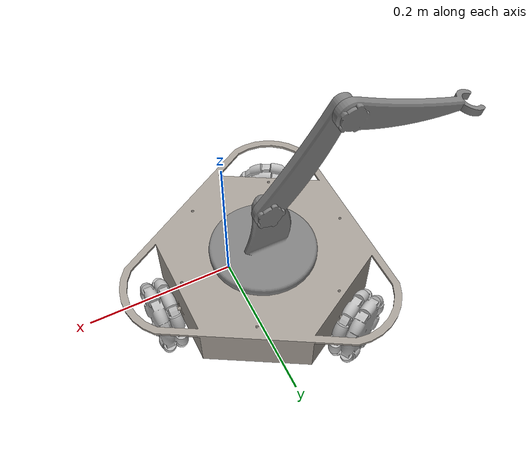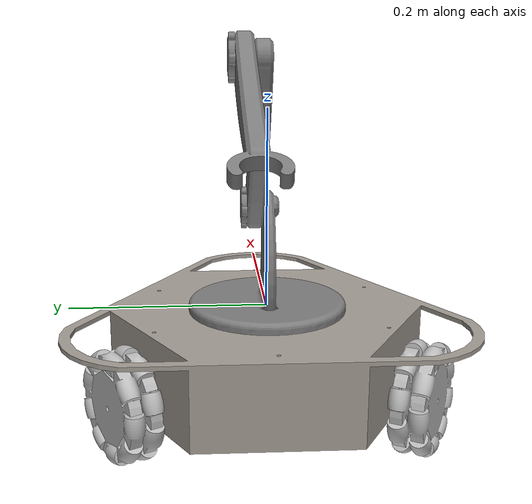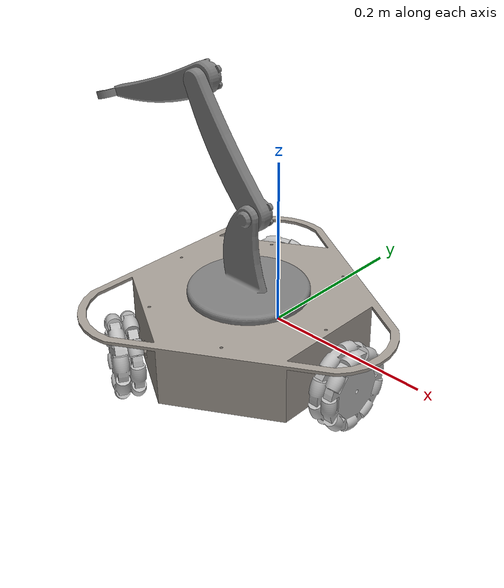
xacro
<?xml version="1.0" encoding="utf-8"?>
<robot name="robot_kin" xmlns:xacro="http://ros.org/wiki/xacro">
  <!-- Base Link -->
  <link name="base_link">
    <inertial>
      <origin xyz="-0.0514950390834328 0.00372680362943543 -0.0212713777766178" rpy="0 0 0" />
      <mass value="5.546524151294" />
      <inertia ixx="0.0390256274086559" ixy="7.53990510164341E-17" ixz="-9.49819895659914E-18" iyy="0.0390256274084877" iyz="-4.52445032425781E-14" izz="0.0727431794136434" />
    </inertial>
    <visual>
      <origin xyz="0 0 0" rpy="0 0 0" />
      <geometry>
        <mesh filename="package://robot_kin/meshes/base_link.STL" />
      </geometry>
      <material name="">
        <color rgba="0.647058823529412 0.619607843137255 0.588235294117647 1" />
      </material>
    </visual>
    <collision>
      <origin xyz="0 0 0" rpy="0 0 0" />
      <geometry>
        <mesh filename="package://robot_kin/meshes/base_link.STL" />
      </geometry>
    </collision>
  </link>

  <!-- Omni 1 -->
  <link name="omni_1">
    <inertial>
      <origin xyz="2.10248485288389E-15 -4.64905891561784E-16 -0.0150000000000003" rpy="0 0 0" />
      <mass value="0.208733977688544" />
      <inertia ixx="5.75297014634535E-05" ixy="-3.89635155736978E-20" ixz="5.02608940799584E-19" iyy="5.75297014634539E-05" iyz="-1.7427007015891E-19" izz="9.13704714530288E-05" />
    </inertial>
    <visual>
      <origin xyz="0 0 0" rpy="0 0 0" />
      <geometry>
        <mesh filename="package://robot_kin/meshes/omni_1.STL" />
      </geometry>
      <material name="">
        <color rgba="0.752941176470588 0.752941176470588 0.752941176470588 1" />
      </material>
    </visual>
    <collision>
      <origin xyz="0 0 0" rpy="0 0 0" />
      <geometry>
        <mesh filename="package://robot_kin/meshes/omni_1.STL" />
      </geometry>
    </collision>
  </link>

  <joint name="joint_omni_1" type="continuous">
    <origin xyz="-0.136496944367027 -0.143500815062323 -0.0472051656727379" rpy="-1.57079632679489 -1.18691023115661 2.61799387799149" />
    <parent link="base_link" />
    <child link="omni_1" />
    <axis xyz="0 0 1" />
    <dynamics damping="0.1" friction="0.1" />
  </joint>

  <!-- Omni 2 -->
  <link name="omni_2">
    <inertial>
      <origin xyz="2.51881848711832E-15 -2.0122792321331E-16 -0.0150000000000004" rpy="0 0 0" />
      <mass value="0.208733977688543" />
      <inertia ixx="5.75297014634536E-05" ixy="3.25169315859978E-06" ixz="2.96831173668244E-06" iyy="5.75297014634537E-05" iyz="-1.20507616431351E-07" izz="9.13704714530288E-05" />
    </inertial>
    <visual>
      <origin xyz="0 0 0" rpy="0 0 0" />
      <geometry>
        <mesh filename="package://robot_kin/meshes/omni_2.STL" />
      </geometry>
      <material name="">
        <color rgba="0.752941176470588 0.752941176470588 0.752941176470588 1" />
      </material>
    </visual>
    <collision>
      <origin xyz="0 0 0" rpy="0 0 0" />
      <geometry>
        <mesh filename="package://robot_kin/meshes/omni_2.STL" />
      </geometry>
    </collision>
  </link>

  <joint name="joint_omni_2" type="continuous">
    <origin xyz="-0.136496944367024 0.150954422321192 -0.0472051656727389" rpy="-1.5707963267949 0.532099877009558 0.523598775598294" />
    <parent link="base_link" />
    <child link="omni_2" />
    <axis xyz="0 0 1" />
    <dynamics damping="0.1" friction="0.1" />
  </joint>

  <!-- Omni 3 -->
  <link name="omni_3">
    <inertial>
      <origin xyz="2.04697370165263E-15 -4.57966997657877E-16 -0.0150000000000004" rpy="0 0 0" />
      <mass value="0.208733977688544" />
      <inertia ixx="5.75297014634535E-05" ixy="-5.59041745187838E-20" ixz="5.01350143462744E-19" iyy="5.75297014634538E-05" iyz="-2.67520268147213E-19" izz="9.13704714530288E-05" />
    </inertial>
    <visual>
      <origin xyz="0 0 0" rpy="0 0 0" />
      <geometry>
        <mesh filename="package://robot_kin/meshes/omni_3.STL" />
      </geometry>
      <material name="">
        <color rgba="0.752941176470588 0.752941176470588 0.752941176470588 1" />
      </material>
    </visual>
    <collision>
      <origin xyz="0 0 0" rpy="0 0 0" />
      <geometry>
        <mesh filename="package://robot_kin/meshes/omni_3.STL" />
      </geometry>
    </collision>
  </link>

  <joint name="joint_omni_3" type="continuous">
    <origin xyz="0.118508771484474 0.00372680362943003 -0.0472051656727379" rpy="-1.5707963267949 0.854297069502276 -1.57079632679491" />
    <parent link="base_link" />
    <child link="omni_3" />
    <axis xyz="0 0 1" />
    <dynamics damping="0.1" friction="0.1" />
  </joint>

  <!-- Link 1 -->
  <link name="link_1">
    <inertial>
      <origin xyz="-0.00197622872489094 -4.49272203594166E-05 0.00633251365290859" rpy="0 0 0" />
      <mass value="0.214783356206923" />
      <inertia ixx="0.000365790344438595" ixy="1.90730142866856E-08" ixz="1.46206270755554E-05" iyy="0.000380010525298812" iyz="8.07220952141231E-07" izz="0.000475014888435784" />
    </inertial>
    <visual>
      <origin xyz="0 0 0" rpy="0 0 0" />
      <geometry>
        <mesh filename="package://robot_kin/meshes/link_1.STL" />
      </geometry>
      <material name="">
        <color rgba="0.498039215686275 0.498039215686275 0.498039215686275 1" />
      </material>
    </visual>
    <collision>
      <origin xyz="0 0 0" rpy="0 0 0" />
      <geometry>
        <mesh filename="package://robot_kin/meshes/link_1.STL" />
      </geometry>
    </collision>
  </link>

  <joint name="joint_link_1" type="fixed">
    <origin xyz="-0.0514950390831942 0.00372680362943392 0.0242948343272624" rpy="0 0 0" />
    <parent link="base_link" />
    <child link="link_1" />
    <axis xyz="0 0 0" />
  </joint>

  <!-- Link 2 -->
  <link name="link_2">
    <inertial>
      <origin xyz="0.0734879371385836 -0.00334262643425878 0.00783116598654759" rpy="0 0 0" />
      <mass value="0.108863827343016" />
      <inertia ixx="1.52983726752256E-05" ixy="3.25169315859978E-06" ixz="2.96831173668244E-06" iyy="0.000349212764999917" iyz="-1.20507616431351E-07" izz="0.000359580214053703" />
    </inertial>
    <visual>
      <origin xyz="0 0 0" rpy="0 0 0" />
      <geometry>
        <mesh filename="package://robot_kin/meshes/link_2.STL" />
      </geometry>
      <material name="">
        <color rgba="0.498039215686275 0.498039215686275 0.498039215686275 1" />
      </material>
    </visual>
    <collision>
      <origin xyz="0 0 0" rpy="0 0 0" />
      <geometry>
        <mesh filename="package://robot_kin/meshes/link_2.STL" />
      </geometry>
    </collision>
  </link>

  <joint name="joint_link_2" type="revolute">
    <origin xyz="0 0.005 0.09" rpy="1.5708 -0.97083 3.1416" />
    <parent link="link_1" />
    <child link="link_2" />
    <axis xyz="0 0 1" />
    <limit lower="0" upper="0" effort="0" velocity="0" />
    <dynamics damping="0.1" friction="0.1" />
  </joint>

  <!-- Link 3 -->
  <link name="link_3">
    <inertial>
      <origin xyz="0.0679394800286911 -0.00254732956132153 0.00791117403147978" rpy="0 0 0" />
      <mass value="0.0922267153628876" />
      <inertia ixx="1.11543901229101E-05" ixy="3.03180485829024E-06" ixz="2.56993305226668E-06" iyy="0.00031313631090358" iyz="-1.19027339136059E-07" izz="0.000318250360418558" />
    </inertial>
    <visual>
      <origin xyz="0 0 0" rpy="0 0 0" />
      <geometry>
        <mesh filename="package://robot_kin/meshes/link_3.STL" />
      </geometry>
      <material name="">
        <color rgba="0.498039215686275 0.498039215686275 0.498039215686275 1" />
      </material>
    </visual>
    <collision>
      <origin xyz="0 0 0" rpy="0 0 0" />
      <geometry>
        <mesh filename="package://robot_kin/meshes/link_3.STL" />
      </geometry>
    </collision>
  </link>

  <joint name="joint_link_3" type="revolute">
    <origin xyz="0.17 0 0.015" rpy="0 0 -1.2916" />
    <parent link="link_2" />
    <child link="link_3" />
    <axis xyz="0 0 1" />
    <limit lower="0" upper="0" effort="0" velocity="0" />
    <dynamics damping="0.1" friction="0.1" />
  </joint>
</robot>
